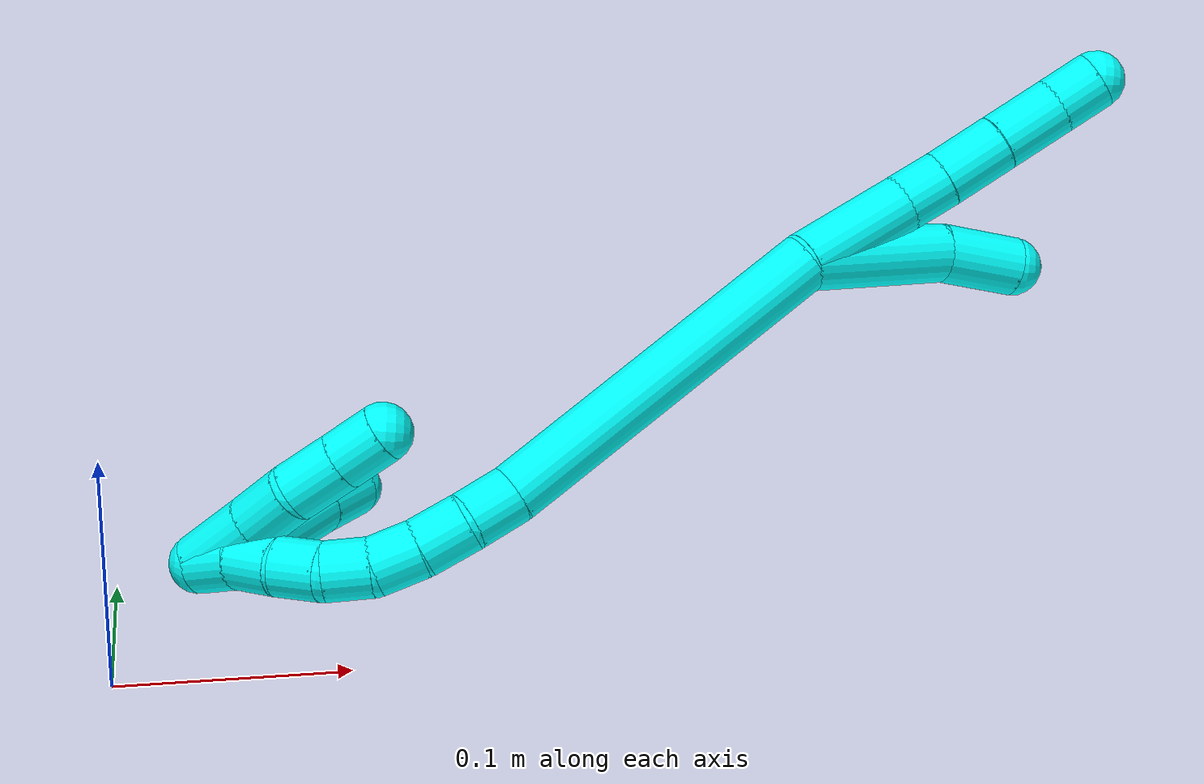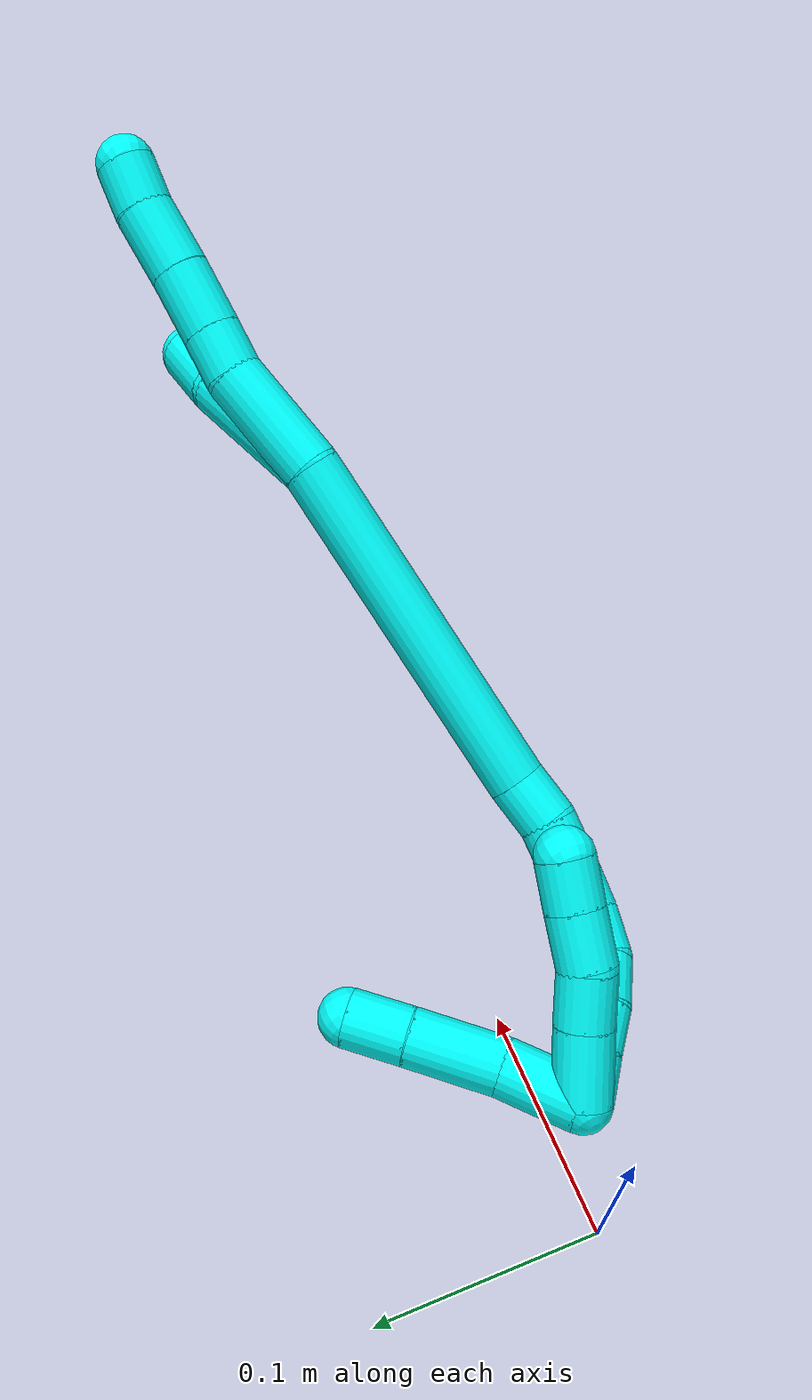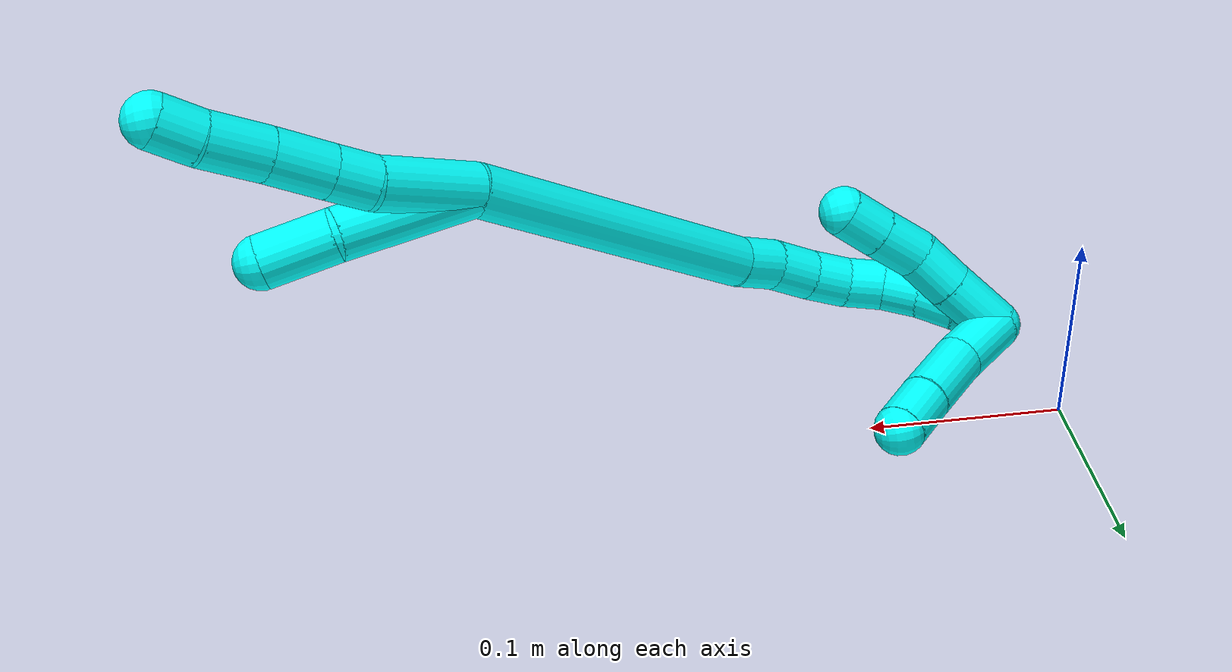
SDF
<sdf version="1.7">
 <world name="default">
  <model name="3">
   <static>0</static>
   <link name="3">
    <collision name="collision-cylinder-e_1_2_8">
     <pose>0.003346 0.014306 0.020602 -0.606973 0.132629 -0.041589</pose>
     <geometry><cylinder><radius>0.0125</radius><length>0.050608</length></cylinder></geometry>
     <surface>
      <friction><ode><mu>1.16</mu><mu2>1.16</mu2><slip1>0</slip1><slip2>0</slip2></ode></friction>
      <contact><ode><kp>1e+06</kp><kd>1</kd><max_vel>0</max_vel><min_depth>0.001</min_depth></ode></contact>
     </surface>
    </collision>
    <visual name="visual-cylinder-e_1_2_8">
     <pose>0.003346 0.014306 0.020602 -0.606973 0.132629 -0.041589</pose>
     <geometry><cylinder><radius>0.0125</radius><length>0.050608</length></cylinder></geometry>
     <material><ambient>0.003922 1 0.996078 1</ambient></material>
    </visual>
    <collision name="collision-cylinder-e_2_8_9">
     <pose>0.005821 0.034568 0.049489 -0.623241 -0.08524 0.027472</pose>
     <geometry><cylinder><radius>0.0125</radius><length>0.020482</length></cylinder></geometry>
     <surface>
      <friction><ode><mu>1.16</mu><mu2>1.16</mu2><slip1>0</slip1><slip2>0</slip2></ode></friction>
      <contact><ode><kp>1e+06</kp><kd>1</kd><max_vel>0</max_vel><min_depth>0.001</min_depth></ode></contact>
     </surface>
    </collision>
    <visual name="visual-cylinder-e_2_8_9">
     <pose>0.005821 0.034568 0.049489 -0.623241 -0.08524 0.027472</pose>
     <geometry><cylinder><radius>0.0125</radius><length>0.020482</length></cylinder></geometry>
     <material><ambient>0.003922 1 0.996078 1</ambient></material>
    </visual>
    <collision name="collision-cylinder-e_3_9_10">
     <pose>0.00388 0.049175 0.069055 -0.654251 -0.07506 0.02548</pose>
     <geometry><cylinder><radius>0.0125</radius><length>0.028513</length></cylinder></geometry>
     <surface>
      <friction><ode><mu>1.16</mu><mu2>1.16</mu2><slip1>0</slip1><slip2>0</slip2></ode></friction>
      <contact><ode><kp>1e+06</kp><kd>1</kd><max_vel>0</max_vel><min_depth>0.001</min_depth></ode></contact>
     </surface>
    </collision>
    <visual name="visual-cylinder-e_3_9_10">
     <pose>0.00388 0.049175 0.069055 -0.654251 -0.07506 0.02548</pose>
     <geometry><cylinder><radius>0.0125</radius><length>0.028513</length></cylinder></geometry>
     <material><ambient>0.003922 1 0.996078 1</ambient></material>
    </visual>
    <collision name="collision-cylinder-e_4_10_11">
     <pose>0.002238 0.066796 0.09212 -0.650558 -0.038618 0.013026</pose>
     <geometry><cylinder><radius>0.0125</radius><length>0.029642</length></cylinder></geometry>
     <surface>
      <friction><ode><mu>1.16</mu><mu2>1.16</mu2><slip1>0</slip1><slip2>0</slip2></ode></friction>
      <contact><ode><kp>1e+06</kp><kd>1</kd><max_vel>0</max_vel><min_depth>0.001</min_depth></ode></contact>
     </surface>
    </collision>
    <visual name="visual-cylinder-e_4_10_11">
     <pose>0.002238 0.066796 0.09212 -0.650558 -0.038618 0.013026</pose>
     <geometry><cylinder><radius>0.0125</radius><length>0.029642</length></cylinder></geometry>
     <material><ambient>0.003922 1 0.996078 1</ambient></material>
    </visual>
    <collision name="collision-cylinder-e_5_11_6">
     <pose>-0.000157 0.082046 0.111963 -0.662086 -0.176621 0.060842</pose>
     <geometry><cylinder><radius>0.0125</radius><length>0.020756</length></cylinder></geometry>
     <surface>
      <friction><ode><mu>1.16</mu><mu2>1.16</mu2><slip1>0</slip1><slip2>0</slip2></ode></friction>
      <contact><ode><kp>1e+06</kp><kd>1</kd><max_vel>0</max_vel><min_depth>0.001</min_depth></ode></contact>
     </surface>
    </collision>
    <visual name="visual-cylinder-e_5_11_6">
     <pose>-0.000157 0.082046 0.111963 -0.662086 -0.176621 0.060842</pose>
     <geometry><cylinder><radius>0.0125</radius><length>0.020756</length></cylinder></geometry>
     <material><ambient>0.003922 1 0.996078 1</ambient></material>
    </visual>
    <collision name="collision-cylinder-e_1_2_12">
     <pose>0.008368 0.005442 0.031409 -0.171571 0.25673 -0.022199</pose>
     <geometry><cylinder><radius>0.0125</radius><length>0.065914</length></cylinder></geometry>
     <surface>
      <friction><ode><mu>1.16</mu><mu2>1.16</mu2><slip1>0</slip1><slip2>0</slip2></ode></friction>
      <contact><ode><kp>1e+06</kp><kd>1</kd><max_vel>0</max_vel><min_depth>0.001</min_depth></ode></contact>
     </surface>
    </collision>
    <visual name="visual-cylinder-e_1_2_12">
     <pose>0.008368 0.005442 0.031409 -0.171571 0.25673 -0.022199</pose>
     <geometry><cylinder><radius>0.0125</radius><length>0.065914</length></cylinder></geometry>
     <material><ambient>0.003922 1 0.996078 1</ambient></material>
    </visual>
    <collision name="collision-cylinder-e_2_12_5">
     <pose>0.019071 0.009755 0.079662 0.066979 0.137375 0.00461</pose>
     <geometry><cylinder><radius>0.0125</radius><length>0.034086</length></cylinder></geometry>
     <surface>
      <friction><ode><mu>1.16</mu><mu2>1.16</mu2><slip1>0</slip1><slip2>0</slip2></ode></friction>
      <contact><ode><kp>1e+06</kp><kd>1</kd><max_vel>0</max_vel><min_depth>0.001</min_depth></ode></contact>
     </surface>
    </collision>
    <visual name="visual-cylinder-e_2_12_5">
     <pose>0.019071 0.009755 0.079662 0.066979 0.137375 0.00461</pose>
     <geometry><cylinder><radius>0.0125</radius><length>0.034086</length></cylinder></geometry>
     <material><ambient>0.003922 1 0.996078 1</ambient></material>
    </visual>
    <collision name="collision-cylinder-e_1_2_13">
     <pose>-0.00105 -0.052763 -0.057609 2.40008 -0.013441 -0.034574</pose>
     <geometry><cylinder><radius>0.0125</radius><length>0.156253</length></cylinder></geometry>
     <surface>
      <friction><ode><mu>1.16</mu><mu2>1.16</mu2><slip1>0</slip1><slip2>0</slip2></ode></friction>
      <contact><ode><kp>1e+06</kp><kd>1</kd><max_vel>0</max_vel><min_depth>0.001</min_depth></ode></contact>
     </surface>
    </collision>
    <visual name="visual-cylinder-e_1_2_13">
     <pose>-0.00105 -0.052763 -0.057609 2.40008 -0.013441 -0.034574</pose>
     <geometry><cylinder><radius>0.0125</radius><length>0.156253</length></cylinder></geometry>
     <material><ambient>0.003922 1 0.996078 1</ambient></material>
    </visual>
    <collision name="collision-cylinder-e_2_13_14">
     <pose>-0.003124 -0.111722 -0.124096 2.53223 -0.094271 -0.297778</pose>
     <geometry><cylinder><radius>0.0125</radius><length>0.021751</length></cylinder></geometry>
     <surface>
      <friction><ode><mu>1.16</mu><mu2>1.16</mu2><slip1>0</slip1><slip2>0</slip2></ode></friction>
      <contact><ode><kp>1e+06</kp><kd>1</kd><max_vel>0</max_vel><min_depth>0.001</min_depth></ode></contact>
     </surface>
    </collision>
    <visual name="visual-cylinder-e_2_13_14">
     <pose>-0.003124 -0.111722 -0.124096 2.53223 -0.094271 -0.297778</pose>
     <geometry><cylinder><radius>0.0125</radius><length>0.021751</length></cylinder></geometry>
     <material><ambient>0.003922 1 0.996078 1</ambient></material>
    </visual>
    <collision name="collision-cylinder-e_3_14_15">
     <pose>-0.002755 -0.123928 -0.141842 2.54603 0.129299 0.415786</pose>
     <geometry><cylinder><radius>0.0125</radius><length>0.021604</length></cylinder></geometry>
     <surface>
      <friction><ode><mu>1.16</mu><mu2>1.16</mu2><slip1>0</slip1><slip2>0</slip2></ode></friction>
      <contact><ode><kp>1e+06</kp><kd>1</kd><max_vel>0</max_vel><min_depth>0.001</min_depth></ode></contact>
     </surface>
    </collision>
    <visual name="visual-cylinder-e_3_14_15">
     <pose>-0.002755 -0.123928 -0.141842 2.54603 0.129299 0.415786</pose>
     <geometry><cylinder><radius>0.0125</radius><length>0.021604</length></cylinder></geometry>
     <material><ambient>0.003922 1 0.996078 1</ambient></material>
    </visual>
    <collision name="collision-cylinder-e_4_15_16">
     <pose>0.000246 -0.134431 -0.159634 2.67517 0.159583 0.649431</pose>
     <geometry><cylinder><radius>0.0125</radius><length>0.020241</length></cylinder></geometry>
     <surface>
      <friction><ode><mu>1.16</mu><mu2>1.16</mu2><slip1>0</slip1><slip2>0</slip2></ode></friction>
      <contact><ode><kp>1e+06</kp><kd>1</kd><max_vel>0</max_vel><min_depth>0.001</min_depth></ode></contact>
     </surface>
    </collision>
    <visual name="visual-cylinder-e_4_15_16">
     <pose>0.000246 -0.134431 -0.159634 2.67517 0.159583 0.649431</pose>
     <geometry><cylinder><radius>0.0125</radius><length>0.020241</length></cylinder></geometry>
     <material><ambient>0.003922 1 0.996078 1</ambient></material>
    </visual>
    <collision name="collision-cylinder-e_5_16_17">
     <pose>0.004133 -0.140594 -0.178155 2.96922 0.22979 1.85627</pose>
     <geometry><cylinder><radius>0.0125</radius><length>0.020006</length></cylinder></geometry>
     <surface>
      <friction><ode><mu>1.16</mu><mu2>1.16</mu2><slip1>0</slip1><slip2>0</slip2></ode></friction>
      <contact><ode><kp>1e+06</kp><kd>1</kd><max_vel>0</max_vel><min_depth>0.001</min_depth></ode></contact>
     </surface>
    </collision>
    <visual name="visual-cylinder-e_5_16_17">
     <pose>0.004133 -0.140594 -0.178155 2.96922 0.22979 1.85627</pose>
     <geometry><cylinder><radius>0.0125</radius><length>0.020006</length></cylinder></geometry>
     <material><ambient>0.003922 1 0.996078 1</ambient></material>
    </visual>
    <collision name="collision-cylinder-e_6_17_18">
     <pose>0.011367 -0.14191 -0.196468 -3.10091 0.516537 -2.98787</pose>
     <geometry><cylinder><radius>0.0125</radius><length>0.020067</length></cylinder></geometry>
     <surface>
      <friction><ode><mu>1.16</mu><mu2>1.16</mu2><slip1>0</slip1><slip2>0</slip2></ode></friction>
      <contact><ode><kp>1e+06</kp><kd>1</kd><max_vel>0</max_vel><min_depth>0.001</min_depth></ode></contact>
     </surface>
    </collision>
    <visual name="visual-cylinder-e_6_17_18">
     <pose>0.011367 -0.14191 -0.196468 -3.10091 0.516537 -2.98787</pose>
     <geometry><cylinder><radius>0.0125</radius><length>0.020067</length></cylinder></geometry>
     <material><ambient>0.003922 1 0.996078 1</ambient></material>
    </visual>
    <collision name="collision-cylinder-e_7_18_19">
     <pose>0.022543 -0.140809 -0.212981 -3.04611 0.671311 -2.86937</pose>
     <geometry><cylinder><radius>0.0125</radius><length>0.020002</length></cylinder></geometry>
     <surface>
      <friction><ode><mu>1.16</mu><mu2>1.16</mu2><slip1>0</slip1><slip2>0</slip2></ode></friction>
      <contact><ode><kp>1e+06</kp><kd>1</kd><max_vel>0</max_vel><min_depth>0.001</min_depth></ode></contact>
     </surface>
    </collision>
    <visual name="visual-cylinder-e_7_18_19">
     <pose>0.022543 -0.140809 -0.212981 -3.04611 0.671311 -2.86937</pose>
     <geometry><cylinder><radius>0.0125</radius><length>0.020002</length></cylinder></geometry>
     <material><ambient>0.003922 1 0.996078 1</ambient></material>
    </visual>
    <collision name="collision-cylinder-e_8_19_1">
     <pose>0.035225 -0.14157 -0.228307 2.944 0.699384 2.61082</pose>
     <geometry><cylinder><radius>0.0125</radius><length>0.020075</length></cylinder></geometry>
     <surface>
      <friction><ode><mu>1.16</mu><mu2>1.16</mu2><slip1>0</slip1><slip2>0</slip2></ode></friction>
      <contact><ode><kp>1e+06</kp><kd>1</kd><max_vel>0</max_vel><min_depth>0.001</min_depth></ode></contact>
     </surface>
    </collision>
    <visual name="visual-cylinder-e_8_19_1">
     <pose>0.035225 -0.14157 -0.228307 2.944 0.699384 2.61082</pose>
     <geometry><cylinder><radius>0.0125</radius><length>0.020075</length></cylinder></geometry>
     <material><ambient>0.003922 1 0.996078 1</ambient></material>
    </visual>
    <collision name="collision-cylinder-e_1_1_20">
     <pose>0.051929 -0.137966 -0.223141 -0.382757 0.642386 -0.128748</pose>
     <geometry><cylinder><radius>0.0125</radius><length>0.034192</length></cylinder></geometry>
     <surface>
      <friction><ode><mu>1.16</mu><mu2>1.16</mu2><slip1>0</slip1><slip2>0</slip2></ode></friction>
      <contact><ode><kp>1e+06</kp><kd>1</kd><max_vel>0</max_vel><min_depth>0.001</min_depth></ode></contact>
     </surface>
    </collision>
    <visual name="visual-cylinder-e_1_1_20">
     <pose>0.051929 -0.137966 -0.223141 -0.382757 0.642386 -0.128748</pose>
     <geometry><cylinder><radius>0.0125</radius><length>0.034192</length></cylinder></geometry>
     <material><ambient>0.003922 1 0.996078 1</ambient></material>
    </visual>
    <collision name="collision-cylinder-e_2_20_21">
     <pose>0.075327 -0.124541 -0.198106 -0.592912 0.724086 -0.230352</pose>
     <geometry><cylinder><radius>0.0125</radius><length>0.039719</length></cylinder></geometry>
     <surface>
      <friction><ode><mu>1.16</mu><mu2>1.16</mu2><slip1>0</slip1><slip2>0</slip2></ode></friction>
      <contact><ode><kp>1e+06</kp><kd>1</kd><max_vel>0</max_vel><min_depth>0.001</min_depth></ode></contact>
     </surface>
    </collision>
    <visual name="visual-cylinder-e_2_20_21">
     <pose>0.075327 -0.124541 -0.198106 -0.592912 0.724086 -0.230352</pose>
     <geometry><cylinder><radius>0.0125</radius><length>0.039719</length></cylinder></geometry>
     <material><ambient>0.003922 1 0.996078 1</ambient></material>
    </visual>
    <collision name="collision-cylinder-e_3_21_4">
     <pose>0.097361 -0.111432 -0.177501 -0.525675 0.748514 -0.210577</pose>
     <geometry><cylinder><radius>0.0125</radius><length>0.026089</length></cylinder></geometry>
     <surface>
      <friction><ode><mu>1.16</mu><mu2>1.16</mu2><slip1>0</slip1><slip2>0</slip2></ode></friction>
      <contact><ode><kp>1e+06</kp><kd>1</kd><max_vel>0</max_vel><min_depth>0.001</min_depth></ode></contact>
     </surface>
    </collision>
    <visual name="visual-cylinder-e_3_21_4">
     <pose>0.097361 -0.111432 -0.177501 -0.525675 0.748514 -0.210577</pose>
     <geometry><cylinder><radius>0.0125</radius><length>0.026089</length></cylinder></geometry>
     <material><ambient>0.003922 1 0.996078 1</ambient></material>
    </visual>
    <collision name="collision-cylinder-e_1_1_22">
     <pose>0.033048 -0.134007 -0.226076 -0.74863 -0.575106 0.231325</pose>
     <geometry><cylinder><radius>0.0125</radius><length>0.031763</length></cylinder></geometry>
     <surface>
      <friction><ode><mu>1.16</mu><mu2>1.16</mu2><slip1>0</slip1><slip2>0</slip2></ode></friction>
      <contact><ode><kp>1e+06</kp><kd>1</kd><max_vel>0</max_vel><min_depth>0.001</min_depth></ode></contact>
     </surface>
    </collision>
    <visual name="visual-cylinder-e_1_1_22">
     <pose>0.033048 -0.134007 -0.226076 -0.74863 -0.575106 0.231325</pose>
     <geometry><cylinder><radius>0.0125</radius><length>0.031763</length></cylinder></geometry>
     <material><ambient>0.003922 1 0.996078 1</ambient></material>
    </visual>
    <collision name="collision-cylinder-e_2_22_23">
     <pose>0.017815 -0.118339 -0.209451 -0.765877 -0.605896 0.250503</pose>
     <geometry><cylinder><radius>0.0125</radius><length>0.023159</length></cylinder></geometry>
     <surface>
      <friction><ode><mu>1.16</mu><mu2>1.16</mu2><slip1>0</slip1><slip2>0</slip2></ode></friction>
      <contact><ode><kp>1e+06</kp><kd>1</kd><max_vel>0</max_vel><min_depth>0.001</min_depth></ode></contact>
     </surface>
    </collision>
    <visual name="visual-cylinder-e_2_22_23">
     <pose>0.017815 -0.118339 -0.209451 -0.765877 -0.605896 0.250503</pose>
     <geometry><cylinder><radius>0.0125</radius><length>0.023159</length></cylinder></geometry>
     <material><ambient>0.003922 1 0.996078 1</ambient></material>
    </visual>
    <collision name="collision-cylinder-e_3_23_24">
     <pose>0.007079 -0.104687 -0.193769 -0.67445 -0.351502 0.124367</pose>
     <geometry><cylinder><radius>0.0125</radius><length>0.024062</length></cylinder></geometry>
     <surface>
      <friction><ode><mu>1.16</mu><mu2>1.16</mu2><slip1>0</slip1><slip2>0</slip2></ode></friction>
      <contact><ode><kp>1e+06</kp><kd>1</kd><max_vel>0</max_vel><min_depth>0.001</min_depth></ode></contact>
     </surface>
    </collision>
    <visual name="visual-cylinder-e_3_23_24">
     <pose>0.007079 -0.104687 -0.193769 -0.67445 -0.351502 0.124367</pose>
     <geometry><cylinder><radius>0.0125</radius><length>0.024062</length></cylinder></geometry>
     <material><ambient>0.003922 1 0.996078 1</ambient></material>
    </visual>
    <collision name="collision-cylinder-e_4_24_3">
     <pose>-0.000854 -0.091425 -0.177364 -0.68605 -0.369072 0.133131</pose>
     <geometry><cylinder><radius>0.0125</radius><length>0.021016</length></cylinder></geometry>
     <surface>
      <friction><ode><mu>1.16</mu><mu2>1.16</mu2><slip1>0</slip1><slip2>0</slip2></ode></friction>
      <contact><ode><kp>1e+06</kp><kd>1</kd><max_vel>0</max_vel><min_depth>0.001</min_depth></ode></contact>
     </surface>
    </collision>
    <visual name="visual-cylinder-e_4_24_3">
     <pose>-0.000854 -0.091425 -0.177364 -0.68605 -0.369072 0.133131</pose>
     <geometry><cylinder><radius>0.0125</radius><length>0.021016</length></cylinder></geometry>
     <material><ambient>0.003922 1 0.996078 1</ambient></material>
    </visual>
    <collision name="collision-sphere-3">
     <pose>-0.004645 -0.085217 -0.16978 0 -0 0</pose>
     <geometry><sphere><radius>0.0125</radius></sphere></geometry>
     <surface>
      <friction><ode><mu>1.16</mu><mu2>1.16</mu2><slip1>0</slip1><slip2>0</slip2></ode></friction>
      <contact><ode><kp>1e+06</kp><kd>1</kd><max_vel>0</max_vel><min_depth>0.001</min_depth></ode></contact>
     </surface>
    </collision>
    <visual name="visual-sphere-3">
     <pose>-0.004645 -0.085217 -0.16978 0 -0 0</pose>
     <geometry><sphere><radius>0.0125</radius></sphere></geometry>
     <material><ambient>0.003922 1 0.996078 1</ambient></material>
    </visual>
    <collision name="collision-sphere-24">
     <pose>0.002936 -0.097634 -0.184947 0 -0 0</pose>
     <geometry><sphere><radius>0.0125</radius></sphere></geometry>
     <surface>
      <friction><ode><mu>1.16</mu><mu2>1.16</mu2><slip1>0</slip1><slip2>0</slip2></ode></friction>
      <contact><ode><kp>1e+06</kp><kd>1</kd><max_vel>0</max_vel><min_depth>0.001</min_depth></ode></contact>
     </surface>
    </collision>
    <visual name="visual-sphere-24">
     <pose>0.002936 -0.097634 -0.184947 0 -0 0</pose>
     <geometry><sphere><radius>0.0125</radius></sphere></geometry>
     <material><ambient>0.003922 1 0.996078 1</ambient></material>
    </visual>
    <collision name="collision-sphere-23">
     <pose>0.011221 -0.111741 -0.202591 0 -0 0</pose>
     <geometry><sphere><radius>0.0125</radius></sphere></geometry>
     <surface>
      <friction><ode><mu>1.16</mu><mu2>1.16</mu2><slip1>0</slip1><slip2>0</slip2></ode></friction>
      <contact><ode><kp>1e+06</kp><kd>1</kd><max_vel>0</max_vel><min_depth>0.001</min_depth></ode></contact>
     </surface>
    </collision>
    <visual name="visual-sphere-23">
     <pose>0.011221 -0.111741 -0.202591 0 -0 0</pose>
     <geometry><sphere><radius>0.0125</radius></sphere></geometry>
     <material><ambient>0.003922 1 0.996078 1</ambient></material>
    </visual>
    <collision name="collision-sphere-22">
     <pose>0.02441 -0.124936 -0.216312 0 -0 0</pose>
     <geometry><sphere><radius>0.0125</radius></sphere></geometry>
     <surface>
      <friction><ode><mu>1.16</mu><mu2>1.16</mu2><slip1>0</slip1><slip2>0</slip2></ode></friction>
      <contact><ode><kp>1e+06</kp><kd>1</kd><max_vel>0</max_vel><min_depth>0.001</min_depth></ode></contact>
     </surface>
    </collision>
    <visual name="visual-sphere-22">
     <pose>0.02441 -0.124936 -0.216312 0 -0 0</pose>
     <geometry><sphere><radius>0.0125</radius></sphere></geometry>
     <material><ambient>0.003922 1 0.996078 1</ambient></material>
    </visual>
    <collision name="collision-sphere-4">
     <pose>0.106238 -0.106636 -0.169234 0 -0 0</pose>
     <geometry><sphere><radius>0.0125</radius></sphere></geometry>
     <surface>
      <friction><ode><mu>1.16</mu><mu2>1.16</mu2><slip1>0</slip1><slip2>0</slip2></ode></friction>
      <contact><ode><kp>1e+06</kp><kd>1</kd><max_vel>0</max_vel><min_depth>0.001</min_depth></ode></contact>
     </surface>
    </collision>
    <visual name="visual-sphere-4">
     <pose>0.106238 -0.106636 -0.169234 0 -0 0</pose>
     <geometry><sphere><radius>0.0125</radius></sphere></geometry>
     <material><ambient>0.003922 1 0.996078 1</ambient></material>
    </visual>
    <collision name="collision-sphere-21">
     <pose>0.088483 -0.116228 -0.185769 0 -0 0</pose>
     <geometry><sphere><radius>0.0125</radius></sphere></geometry>
     <surface>
      <friction><ode><mu>1.16</mu><mu2>1.16</mu2><slip1>0</slip1><slip2>0</slip2></ode></friction>
      <contact><ode><kp>1e+06</kp><kd>1</kd><max_vel>0</max_vel><min_depth>0.001</min_depth></ode></contact>
     </surface>
    </collision>
    <visual name="visual-sphere-21">
     <pose>0.088483 -0.116228 -0.185769 0 -0 0</pose>
     <geometry><sphere><radius>0.0125</radius></sphere></geometry>
     <material><ambient>0.003922 1 0.996078 1</ambient></material>
    </visual>
    <collision name="collision-sphere-20">
     <pose>0.062172 -0.132853 -0.210444 0 -0 0</pose>
     <geometry><sphere><radius>0.0125</radius></sphere></geometry>
     <surface>
      <friction><ode><mu>1.16</mu><mu2>1.16</mu2><slip1>0</slip1><slip2>0</slip2></ode></friction>
      <contact><ode><kp>1e+06</kp><kd>1</kd><max_vel>0</max_vel><min_depth>0.001</min_depth></ode></contact>
     </surface>
    </collision>
    <visual name="visual-sphere-20">
     <pose>0.062172 -0.132853 -0.210444 0 -0 0</pose>
     <geometry><sphere><radius>0.0125</radius></sphere></geometry>
     <material><ambient>0.003922 1 0.996078 1</ambient></material>
    </visual>
    <collision name="collision-sphere-6">
     <pose>-0.001981 0.088327 0.12002 0 -0 0</pose>
     <geometry><sphere><radius>0.0125</radius></sphere></geometry>
     <surface>
      <friction><ode><mu>1.16</mu><mu2>1.16</mu2><slip1>0</slip1><slip2>0</slip2></ode></friction>
      <contact><ode><kp>1e+06</kp><kd>1</kd><max_vel>0</max_vel><min_depth>0.001</min_depth></ode></contact>
     </surface>
    </collision>
    <visual name="visual-sphere-6">
     <pose>-0.001981 0.088327 0.12002 0 -0 0</pose>
     <geometry><sphere><radius>0.0125</radius></sphere></geometry>
     <material><ambient>0.003922 1 0.996078 1</ambient></material>
    </visual>
    <collision name="collision-sphere-11">
     <pose>0.001666 0.075765 0.103905 0 -0 0</pose>
     <geometry><sphere><radius>0.0125</radius></sphere></geometry>
     <surface>
      <friction><ode><mu>1.16</mu><mu2>1.16</mu2><slip1>0</slip1><slip2>0</slip2></ode></friction>
      <contact><ode><kp>1e+06</kp><kd>1</kd><max_vel>0</max_vel><min_depth>0.001</min_depth></ode></contact>
     </surface>
    </collision>
    <visual name="visual-sphere-11">
     <pose>0.001666 0.075765 0.103905 0 -0 0</pose>
     <geometry><sphere><radius>0.0125</radius></sphere></geometry>
     <material><ambient>0.003922 1 0.996078 1</ambient></material>
    </visual>
    <collision name="collision-sphere-10">
     <pose>0.002811 0.057827 0.080335 0 -0 0</pose>
     <geometry><sphere><radius>0.0125</radius></sphere></geometry>
     <surface>
      <friction><ode><mu>1.16</mu><mu2>1.16</mu2><slip1>0</slip1><slip2>0</slip2></ode></friction>
      <contact><ode><kp>1e+06</kp><kd>1</kd><max_vel>0</max_vel><min_depth>0.001</min_depth></ode></contact>
     </surface>
    </collision>
    <visual name="visual-sphere-10">
     <pose>0.002811 0.057827 0.080335 0 -0 0</pose>
     <geometry><sphere><radius>0.0125</radius></sphere></geometry>
     <material><ambient>0.003922 1 0.996078 1</ambient></material>
    </visual>
    <collision name="collision-sphere-9">
     <pose>0.004949 0.040524 0.057774 0 -0 0</pose>
     <geometry><sphere><radius>0.0125</radius></sphere></geometry>
     <surface>
      <friction><ode><mu>1.16</mu><mu2>1.16</mu2><slip1>0</slip1><slip2>0</slip2></ode></friction>
      <contact><ode><kp>1e+06</kp><kd>1</kd><max_vel>0</max_vel><min_depth>0.001</min_depth></ode></contact>
     </surface>
    </collision>
    <visual name="visual-sphere-9">
     <pose>0.004949 0.040524 0.057774 0 -0 0</pose>
     <geometry><sphere><radius>0.0125</radius></sphere></geometry>
     <material><ambient>0.003922 1 0.996078 1</ambient></material>
    </visual>
    <collision name="collision-sphere-2">
     <geometry><sphere><radius>0.0125</radius></sphere></geometry>
     <surface>
      <friction><ode><mu>1.16</mu><mu2>1.16</mu2><slip1>0</slip1><slip2>0</slip2></ode></friction>
      <contact><ode><kp>1e+06</kp><kd>1</kd><max_vel>0</max_vel><min_depth>0.001</min_depth></ode></contact>
     </surface>
    </collision>
    <visual name="visual-sphere-2">
     <geometry><sphere><radius>0.0125</radius></sphere></geometry>
     <material><ambient>0.003922 1 0.996078 1</ambient></material>
    </visual>
    <collision name="collision-sphere-19">
     <pose>0.028764 -0.140062 -0.220776 0 -0 0</pose>
     <geometry><sphere><radius>0.0125</radius></sphere></geometry>
     <surface>
      <friction><ode><mu>1.16</mu><mu2>1.16</mu2><slip1>0</slip1><slip2>0</slip2></ode></friction>
      <contact><ode><kp>1e+06</kp><kd>1</kd><max_vel>0</max_vel><min_depth>0.001</min_depth></ode></contact>
     </surface>
    </collision>
    <visual name="visual-sphere-19">
     <pose>0.028764 -0.140062 -0.220776 0 -0 0</pose>
     <geometry><sphere><radius>0.0125</radius></sphere></geometry>
     <material><ambient>0.003922 1 0.996078 1</ambient></material>
    </visual>
    <collision name="collision-sphere-8">
     <pose>0.006692 0.028613 0.041203 0 -0 0</pose>
     <geometry><sphere><radius>0.0125</radius></sphere></geometry>
     <surface>
      <friction><ode><mu>1.16</mu><mu2>1.16</mu2><slip1>0</slip1><slip2>0</slip2></ode></friction>
      <contact><ode><kp>1e+06</kp><kd>1</kd><max_vel>0</max_vel><min_depth>0.001</min_depth></ode></contact>
     </surface>
    </collision>
    <visual name="visual-sphere-8">
     <pose>0.006692 0.028613 0.041203 0 -0 0</pose>
     <geometry><sphere><radius>0.0125</radius></sphere></geometry>
     <material><ambient>0.003922 1 0.996078 1</ambient></material>
    </visual>
    <collision name="collision-sphere-12">
     <pose>0.016737 0.010885 0.062818 0 -0 0</pose>
     <geometry><sphere><radius>0.0125</radius></sphere></geometry>
     <surface>
      <friction><ode><mu>1.16</mu><mu2>1.16</mu2><slip1>0</slip1><slip2>0</slip2></ode></friction>
      <contact><ode><kp>1e+06</kp><kd>1</kd><max_vel>0</max_vel><min_depth>0.001</min_depth></ode></contact>
     </surface>
    </collision>
    <visual name="visual-sphere-12">
     <pose>0.016737 0.010885 0.062818 0 -0 0</pose>
     <geometry><sphere><radius>0.0125</radius></sphere></geometry>
     <material><ambient>0.003922 1 0.996078 1</ambient></material>
    </visual>
    <collision name="collision-sphere-5">
     <pose>0.021405 0.008625 0.096507 0 -0 0</pose>
     <geometry><sphere><radius>0.0125</radius></sphere></geometry>
     <surface>
      <friction><ode><mu>1.16</mu><mu2>1.16</mu2><slip1>0</slip1><slip2>0</slip2></ode></friction>
      <contact><ode><kp>1e+06</kp><kd>1</kd><max_vel>0</max_vel><min_depth>0.001</min_depth></ode></contact>
     </surface>
    </collision>
    <visual name="visual-sphere-5">
     <pose>0.021405 0.008625 0.096507 0 -0 0</pose>
     <geometry><sphere><radius>0.0125</radius></sphere></geometry>
     <material><ambient>0.003922 1 0.996078 1</ambient></material>
    </visual>
    <collision name="collision-sphere-13">
     <pose>-0.0021 -0.105525 -0.115218 0 -0 0</pose>
     <geometry><sphere><radius>0.0125</radius></sphere></geometry>
     <surface>
      <friction><ode><mu>1.16</mu><mu2>1.16</mu2><slip1>0</slip1><slip2>0</slip2></ode></friction>
      <contact><ode><kp>1e+06</kp><kd>1</kd><max_vel>0</max_vel><min_depth>0.001</min_depth></ode></contact>
     </surface>
    </collision>
    <visual name="visual-sphere-13">
     <pose>-0.0021 -0.105525 -0.115218 0 -0 0</pose>
     <geometry><sphere><radius>0.0125</radius></sphere></geometry>
     <material><ambient>0.003922 1 0.996078 1</ambient></material>
    </visual>
    <collision name="collision-sphere-14">
     <pose>-0.004148 -0.117919 -0.132974 0 -0 0</pose>
     <geometry><sphere><radius>0.0125</radius></sphere></geometry>
     <surface>
      <friction><ode><mu>1.16</mu><mu2>1.16</mu2><slip1>0</slip1><slip2>0</slip2></ode></friction>
      <contact><ode><kp>1e+06</kp><kd>1</kd><max_vel>0</max_vel><min_depth>0.001</min_depth></ode></contact>
     </surface>
    </collision>
    <visual name="visual-sphere-14">
     <pose>-0.004148 -0.117919 -0.132974 0 -0 0</pose>
     <geometry><sphere><radius>0.0125</radius></sphere></geometry>
     <material><ambient>0.003922 1 0.996078 1</ambient></material>
    </visual>
    <collision name="collision-sphere-15">
     <pose>-0.001362 -0.129937 -0.15071 0 -0 0</pose>
     <geometry><sphere><radius>0.0125</radius></sphere></geometry>
     <surface>
      <friction><ode><mu>1.16</mu><mu2>1.16</mu2><slip1>0</slip1><slip2>0</slip2></ode></friction>
      <contact><ode><kp>1e+06</kp><kd>1</kd><max_vel>0</max_vel><min_depth>0.001</min_depth></ode></contact>
     </surface>
    </collision>
    <visual name="visual-sphere-15">
     <pose>-0.001362 -0.129937 -0.15071 0 -0 0</pose>
     <geometry><sphere><radius>0.0125</radius></sphere></geometry>
     <material><ambient>0.003922 1 0.996078 1</ambient></material>
    </visual>
    <collision name="collision-sphere-16">
     <pose>0.001854 -0.138924 -0.168559 0 -0 0</pose>
     <geometry><sphere><radius>0.0125</radius></sphere></geometry>
     <surface>
      <friction><ode><mu>1.16</mu><mu2>1.16</mu2><slip1>0</slip1><slip2>0</slip2></ode></friction>
      <contact><ode><kp>1e+06</kp><kd>1</kd><max_vel>0</max_vel><min_depth>0.001</min_depth></ode></contact>
     </surface>
    </collision>
    <visual name="visual-sphere-16">
     <pose>0.001854 -0.138924 -0.168559 0 -0 0</pose>
     <geometry><sphere><radius>0.0125</radius></sphere></geometry>
     <material><ambient>0.003922 1 0.996078 1</ambient></material>
    </visual>
    <collision name="collision-sphere-17">
     <pose>0.006411 -0.142265 -0.187751 0 -0 0</pose>
     <geometry><sphere><radius>0.0125</radius></sphere></geometry>
     <surface>
      <friction><ode><mu>1.16</mu><mu2>1.16</mu2><slip1>0</slip1><slip2>0</slip2></ode></friction>
      <contact><ode><kp>1e+06</kp><kd>1</kd><max_vel>0</max_vel><min_depth>0.001</min_depth></ode></contact>
     </surface>
    </collision>
    <visual name="visual-sphere-17">
     <pose>0.006411 -0.142265 -0.187751 0 -0 0</pose>
     <geometry><sphere><radius>0.0125</radius></sphere></geometry>
     <material><ambient>0.003922 1 0.996078 1</ambient></material>
    </visual>
    <collision name="collision-sphere-18">
     <pose>0.016322 -0.141555 -0.205185 0 -0 0</pose>
     <geometry><sphere><radius>0.0125</radius></sphere></geometry>
     <surface>
      <friction><ode><mu>1.16</mu><mu2>1.16</mu2><slip1>0</slip1><slip2>0</slip2></ode></friction>
      <contact><ode><kp>1e+06</kp><kd>1</kd><max_vel>0</max_vel><min_depth>0.001</min_depth></ode></contact>
     </surface>
    </collision>
    <visual name="visual-sphere-18">
     <pose>0.016322 -0.141555 -0.205185 0 -0 0</pose>
     <geometry><sphere><radius>0.0125</radius></sphere></geometry>
     <material><ambient>0.003922 1 0.996078 1</ambient></material>
    </visual>
    <collision name="collision-sphere-1">
     <pose>0.041687 -0.143078 -0.235839 0 -0 0</pose>
     <geometry><sphere><radius>0.0125</radius></sphere></geometry>
     <surface>
      <friction><ode><mu>1.16</mu><mu2>1.16</mu2><slip1>0</slip1><slip2>0</slip2></ode></friction>
      <contact><ode><kp>1e+06</kp><kd>1</kd><max_vel>0</max_vel><min_depth>0.001</min_depth></ode></contact>
     </surface>
    </collision>
    <visual name="visual-sphere-1">
     <pose>0.041687 -0.143078 -0.235839 0 -0 0</pose>
     <geometry><sphere><radius>0.0125</radius></sphere></geometry>
     <material><ambient>0.003922 1 0.996078 1</ambient></material>
    </visual>
    <inertial>
     <pose>0.015691 -0.058923 -0.081376 0 -0 0</pose>
     <mass>0.75</mass>
     <inertia>
      <ixx>0.000391</ixx>
      <ixy>0</ixy>
      <ixz>0</ixz>
      <iyy>-0.000175</iyy>
      <iyz>0</iyz>
      <izz>0.000191</izz>
     </inertia>
    </inertial>
   </link>
   <pose>0.292955 0.011146 0.168481 1.72476 0.38598 1.62726</pose>
  </model>
 </world>
</sdf>
